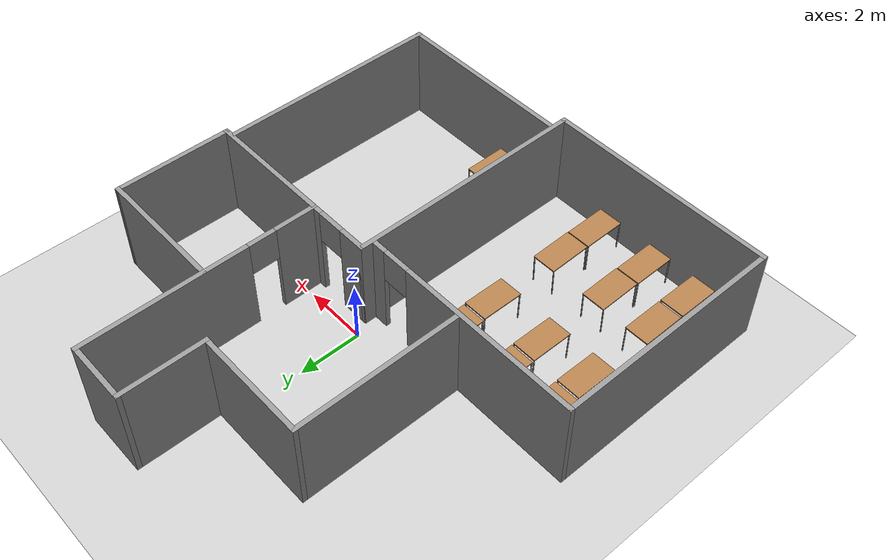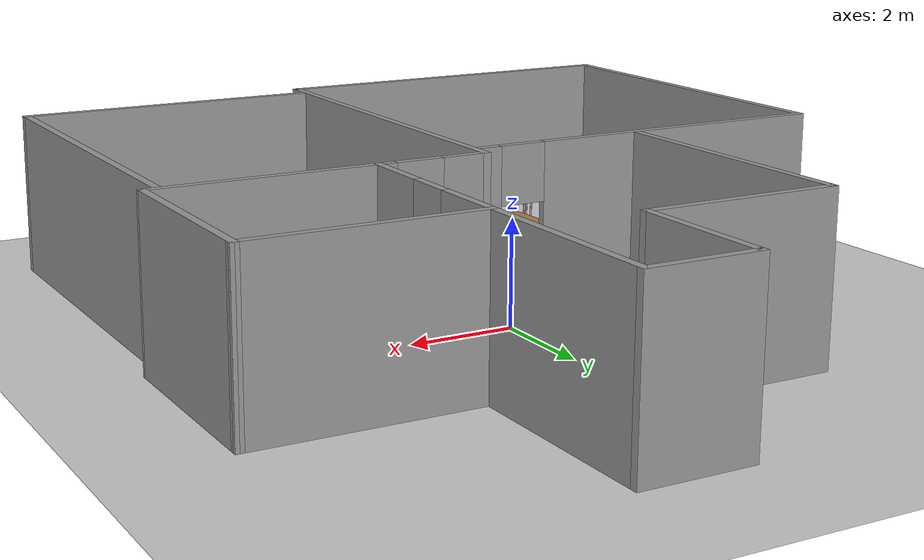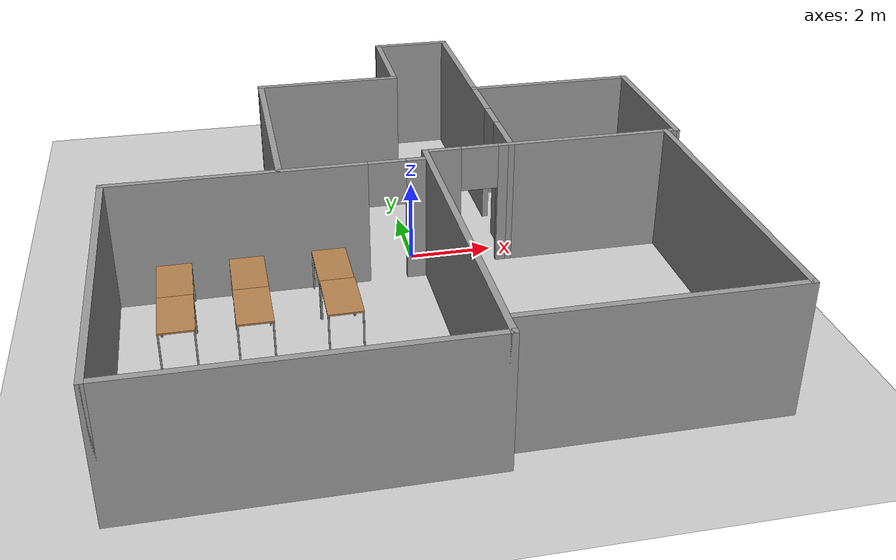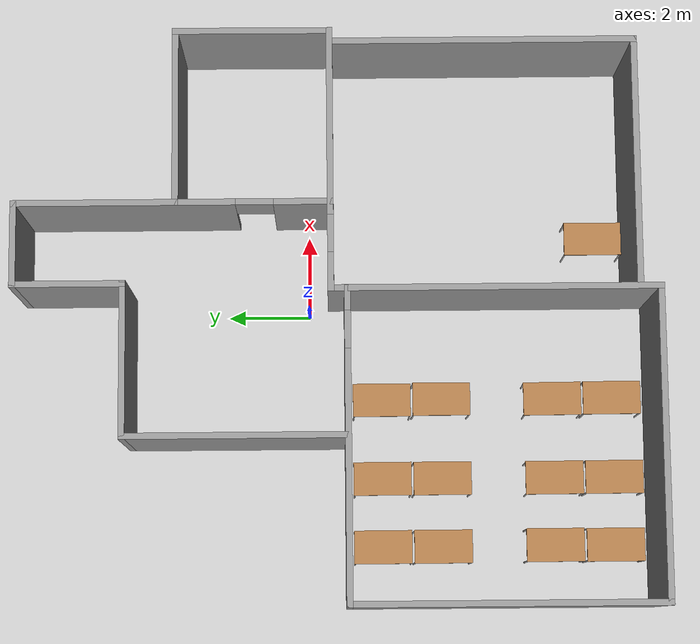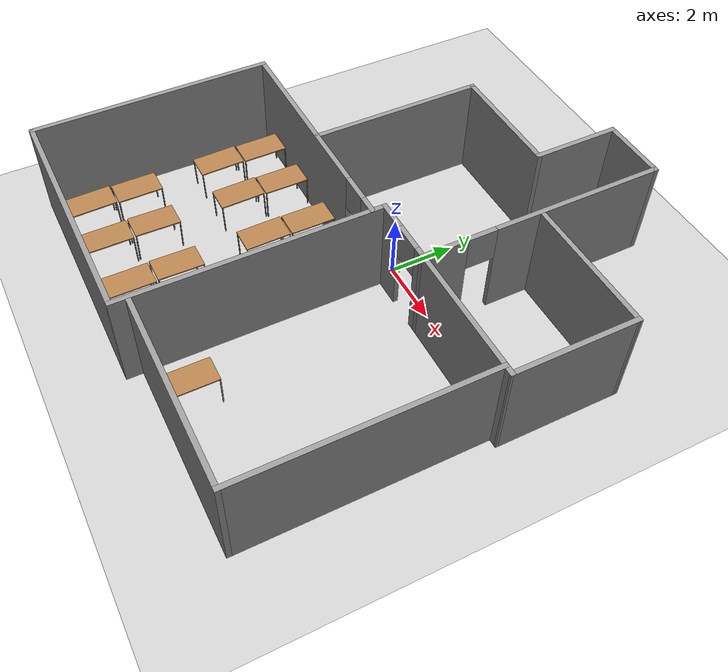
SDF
<sdf version="1.6">
 <world name="default">
  <model name="ground_plane">
   <static>1</static>
   <link name="link">
    <collision name="collision">
     <geometry><plane><normal>0 0 1</normal><size>100 100</size></plane></geometry>
     <surface><friction><ode><mu>100</mu><mu2>50</mu2></ode></friction></surface>
    </collision>
    <visual name="visual">
     <cast_shadows>0</cast_shadows>
     <geometry><plane><normal>0 0 1</normal><size>100 100</size></plane></geometry>
     <material>
      <script><uri>file://media/materials/scripts/gazebo.material</uri><name>Gazebo/Grey</name></script>
     </material>
    </visual>
   </link>
  </model>
  <model name="bh9f_lab">
   <pose>-0.31244 -0.65271 0 0 -0 0</pose>
   <link name="Wall_0">
    <pose>-3.1331 -0.253 0 0 -0 3.14159</pose>
    <visual name="Wall_0_Visual_0">
     <pose>-3.46145 0 1.55 0 -0 0</pose>
     <geometry><box><size>0.601096 0.15 3.1</size></box></geometry>
     <material>
      <script><uri>file://media/materials/scripts/gazebo.material</uri><name>Gazebo/Grey</name></script>
      <ambient>1 1 1 1</ambient>
     </material>
    </visual>
    <collision name="Wall_0_Collision_0">
     <geometry><box><size>0.601096 0.15 3.1</size></box></geometry>
     <pose>-3.46145 0 1.55 0 -0 0</pose>
    </collision>
    <visual name="Wall_0_Visual_1">
     <pose>0.750548 0 1.55 0 -0 0</pose>
     <geometry><box><size>6.0229 0.15 3.1</size></box></geometry>
     <material>
      <script><uri>file://media/materials/scripts/gazebo.material</uri><name>Gazebo/Grey</name></script>
      <ambient>1 1 1 1</ambient>
     </material>
    </visual>
    <collision name="Wall_0_Collision_1">
     <geometry><box><size>6.0229 0.15 3.1</size></box></geometry>
     <pose>0.750548 0 1.55 0 -0 0</pose>
    </collision>
    <visual name="Wall_0_Visual_3">
     <pose>-2.7109 0 2.55 0 -0 0</pose>
     <geometry><box><size>0.9 0.15 1.1</size></box></geometry>
     <material>
      <script><uri>file://media/materials/scripts/gazebo.material</uri><name>Gazebo/Grey</name></script>
      <ambient>1 1 1 1</ambient>
     </material>
    </visual>
    <collision name="Wall_0_Collision_3">
     <geometry><box><size>0.9 0.15 1.1</size></box></geometry>
     <pose>-2.7109 0 2.55 0 -0 0</pose>
    </collision>
   </link>
   <link name="Wall_12">
    <collision name="Wall_12_Collision">
     <geometry><box><size>7.44 0.15 3.1</size></box></geometry>
     <pose>0 0 1.55 0 -0 0</pose>
    </collision>
    <visual name="Wall_12_Visual">
     <pose>0 0 1.55 0 -0 0</pose>
     <geometry><box><size>7.44 0.15 3.1</size></box></geometry>
     <material>
      <script><uri>file://media/materials/scripts/gazebo.material</uri><name>Gazebo/Grey</name></script>
      <ambient>1 1 1 1</ambient>
     </material>
    </visual>
    <pose>6.5499 -3.516 0 0 0 -1.5708</pose>
   </link>
   <link name="Wall_14">
    <collision name="Wall_14_Collision">
     <geometry><box><size>6 0.15 3.1</size></box></geometry>
     <pose>0 0 1.55 0 -0 0</pose>
    </collision>
    <visual name="Wall_14_Visual">
     <pose>0 0 1.55 0 -0 0</pose>
     <geometry><box><size>6 0.15 3.1</size></box></geometry>
     <material>
      <script><uri>file://media/materials/scripts/gazebo.material</uri><name>Gazebo/Grey</name></script>
      <ambient>1 1 1 1</ambient>
     </material>
    </visual>
    <pose>3.6249 -7.161 0 0 -0 3.14159</pose>
   </link>
   <link name="Wall_16">
    <collision name="Wall_16_Collision">
     <geometry><box><size>3.83 0.15 3.1</size></box></geometry>
     <pose>0 0 1.55 0 -0 0</pose>
    </collision>
    <visual name="Wall_16_Visual">
     <pose>0 0 1.55 0 -0 0</pose>
     <geometry><box><size>3.83 0.15 3.1</size></box></geometry>
     <material>
      <script><uri>file://media/materials/scripts/gazebo.material</uri><name>Gazebo/Grey</name></script>
      <ambient>1 1 1 1</ambient>
     </material>
    </visual>
    <pose>6.8149 1.975 0 0 -0 1.56808</pose>
   </link>
   <link name="Wall_18">
    <collision name="Wall_18_Collision">
     <geometry><box><size>4.33 0.15 3.1</size></box></geometry>
     <pose>0 0 1.55 0 -0 0</pose>
    </collision>
    <visual name="Wall_18_Visual">
     <pose>0 0 1.55 0 -0 0</pose>
     <geometry><box><size>4.33 0.15 3.1</size></box></geometry>
     <material>
      <script><uri>file://media/materials/scripts/gazebo.material</uri><name>Gazebo/Grey</name></script>
      <ambient>1 1 1 1</ambient>
     </material>
    </visual>
    <pose>4.7299 3.815 0 0 -0 3.14159</pose>
   </link>
   <link name="Wall_2">
    <collision name="Wall_2_Collision">
     <geometry><box><size>7.542 0.15 3.1</size></box></geometry>
     <pose>0 0 1.55 0 -0 0</pose>
    </collision>
    <visual name="Wall_2_Visual">
     <pose>0 0 1.55 0 -0 0</pose>
     <geometry><box><size>7.542 0.15 3.1</size></box></geometry>
     <material>
      <script><uri>file://media/materials/scripts/gazebo.material</uri><name>Gazebo/Grey</name></script>
      <ambient>1 1 1 1</ambient>
     </material>
    </visual>
    <pose>-6.8201 -3.949 0 0 0 -1.5708</pose>
   </link>
   <link name="Wall_20">
    <pose>2.6379 3.89 0 0 -0 1.5708</pose>
    <visual name="Wall_20_Visual_0">
     <pose>-3.11825 0 1.55 0 -0 0</pose>
     <geometry><box><size>1.42351 0.15 3.1</size></box></geometry>
     <material>
      <script><uri>file://media/materials/scripts/gazebo.material</uri><name>Gazebo/Grey</name></script>
      <ambient>1 1 1 1</ambient>
     </material>
    </visual>
    <collision name="Wall_20_Collision_0">
     <geometry><box><size>1.42351 0.15 3.1</size></box></geometry>
     <pose>-3.11825 0 1.55 0 -0 0</pose>
    </collision>
    <visual name="Wall_20_Visual_1">
     <pose>1.16175 0 1.55 0 -0 0</pose>
     <geometry><box><size>5.33649 0.15 3.1</size></box></geometry>
     <material>
      <script><uri>file://media/materials/scripts/gazebo.material</uri><name>Gazebo/Grey</name></script>
      <ambient>1 1 1 1</ambient>
     </material>
    </visual>
    <collision name="Wall_20_Collision_1">
     <geometry><box><size>5.33649 0.15 3.1</size></box></geometry>
     <pose>1.16175 0 1.55 0 -0 0</pose>
    </collision>
    <visual name="Wall_20_Visual_3">
     <pose>-1.95649 0 2.55 0 -0 0</pose>
     <geometry><box><size>0.9 0.15 1.1</size></box></geometry>
     <material>
      <script><uri>file://media/materials/scripts/gazebo.material</uri><name>Gazebo/Grey</name></script>
      <ambient>1 1 1 1</ambient>
     </material>
    </visual>
    <collision name="Wall_20_Collision_3">
     <geometry><box><size>0.9 0.15 1.1</size></box></geometry>
     <pose>-1.95649 0 2.55 0 -0 0</pose>
    </collision>
   </link>
   <link name="Wall_24">
    <collision name="Wall_24_Collision">
     <geometry><box><size>2.089 0.15 3.1</size></box></geometry>
     <pose>0 0 1.55 0 -0 0</pose>
    </collision>
    <visual name="Wall_24_Visual">
     <pose>0 0 1.55 0 -0 0</pose>
     <geometry><box><size>2.089 0.15 3.1</size></box></geometry>
     <material>
      <script><uri>file://media/materials/scripts/gazebo.material</uri><name>Gazebo/Grey</name></script>
      <ambient>1 1 1 1</ambient>
     </material>
    </visual>
    <pose>1.6684 7.645 0 0 -0 3.14159</pose>
   </link>
   <link name="Wall_26">
    <collision name="Wall_26_Collision">
     <geometry><box><size>2.75 0.15 3.1</size></box></geometry>
     <pose>0 0 1.55 0 -0 0</pose>
    </collision>
    <visual name="Wall_26_Visual">
     <pose>0 0 1.55 0 -0 0</pose>
     <geometry><box><size>2.75 0.15 3.1</size></box></geometry>
     <material>
      <script><uri>file://media/materials/scripts/gazebo.material</uri><name>Gazebo/Grey</name></script>
      <ambient>1 1 1 1</ambient>
     </material>
    </visual>
    <pose>0.698898 6.345 0 0 0 -1.5708</pose>
   </link>
   <link name="Wall_28">
    <collision name="Wall_28_Collision">
     <geometry><box><size>3.75 0.15 3.1</size></box></geometry>
     <pose>0 0 1.55 0 -0 0</pose>
    </collision>
    <visual name="Wall_28_Visual">
     <pose>0 0 1.55 0 -0 0</pose>
     <geometry><box><size>3.75 0.15 3.1</size></box></geometry>
     <material>
      <script><uri>file://media/materials/scripts/gazebo.material</uri><name>Gazebo/Grey</name></script>
      <ambient>1 1 1 1</ambient>
     </material>
    </visual>
    <pose>-1.1011 5.045 0 0 -0 3.14159</pose>
   </link>
   <link name="Wall_30">
    <collision name="Wall_30_Collision">
     <geometry><box><size>5.41 0.15 3.1</size></box></geometry>
     <pose>0 0 1.55 0 -0 0</pose>
    </collision>
    <visual name="Wall_30_Visual">
     <pose>0 0 1.55 0 -0 0</pose>
     <geometry><box><size>5.41 0.15 3.1</size></box></geometry>
     <material>
      <script><uri>file://media/materials/scripts/gazebo.material</uri><name>Gazebo/Grey</name></script>
      <ambient>1 1 1 1</ambient>
     </material>
    </visual>
    <pose>-2.9011 2.415 0 0 0 -1.5708</pose>
   </link>
   <link name="Wall_4">
    <collision name="Wall_4_Collision">
     <geometry><box><size>7.53 0.15 3.1</size></box></geometry>
     <pose>0 0 1.55 0 -0 0</pose>
    </collision>
    <visual name="Wall_4_Visual">
     <pose>0 0 1.55 0 -0 0</pose>
     <geometry><box><size>7.53 0.15 3.1</size></box></geometry>
     <material>
      <script><uri>file://media/materials/scripts/gazebo.material</uri><name>Gazebo/Grey</name></script>
      <ambient>1 1 1 1</ambient>
     </material>
    </visual>
    <pose>-3.1301 -7.645 0 0 -0 0</pose>
   </link>
   <link name="Wall_6">
    <collision name="Wall_6_Collision">
     <geometry><box><size>7.93 0.15 3.1</size></box></geometry>
     <pose>0 0 1.55 0 -0 0</pose>
    </collision>
    <visual name="Wall_6_Visual">
     <pose>0 0 1.55 0 -0 0</pose>
     <geometry><box><size>7.93 0.15 3.1</size></box></geometry>
     <material>
      <script><uri>file://media/materials/scripts/gazebo.material</uri><name>Gazebo/Grey</name></script>
      <ambient>1 1 1 1</ambient>
     </material>
    </visual>
    <pose>0.559898 -3.755 0 0 -0 1.5708</pose>
   </link>
   <link name="Wall_8">
    <pose>3.6849 0.135 0 0 -0 0</pose>
    <visual name="Wall_8_Visual_0">
     <pose>-2.73161 0 1.55 0 -0 0</pose>
     <geometry><box><size>0.936778 0.15 3.1</size></box></geometry>
     <material>
      <script><uri>file://media/materials/scripts/gazebo.material</uri><name>Gazebo/Grey</name></script>
      <ambient>1 1 1 1</ambient>
     </material>
    </visual>
    <collision name="Wall_8_Collision_0">
     <geometry><box><size>0.936778 0.15 3.1</size></box></geometry>
     <pose>-2.73161 0 1.55 0 -0 0</pose>
    </collision>
    <visual name="Wall_8_Visual_1">
     <pose>0.918389 0 1.55 0 -0 0</pose>
     <geometry><box><size>4.56322 0.15 3.1</size></box></geometry>
     <material>
      <script><uri>file://media/materials/scripts/gazebo.material</uri><name>Gazebo/Grey</name></script>
      <ambient>1 1 1 1</ambient>
     </material>
    </visual>
    <collision name="Wall_8_Collision_1">
     <geometry><box><size>4.56322 0.15 3.1</size></box></geometry>
     <pose>0.918389 0 1.55 0 -0 0</pose>
    </collision>
    <visual name="Wall_8_Visual_3">
     <pose>-1.81322 0 2.55 0 -0 0</pose>
     <geometry><box><size>0.9 0.15 1.1</size></box></geometry>
     <material>
      <script><uri>file://media/materials/scripts/gazebo.material</uri><name>Gazebo/Grey</name></script>
      <ambient>1 1 1 1</ambient>
     </material>
    </visual>
    <collision name="Wall_8_Collision_3">
     <geometry><box><size>0.9 0.15 1.1</size></box></geometry>
     <pose>-1.81322 0 2.55 0 -0 0</pose>
    </collision>
   </link>
   <static>1</static>
  </model>
  <model name="table_0_clone_0_clone_clone_2">
   <static>0</static>
   <link name="link">
    <collision name="surface">
     <pose>0 0 1 0 -0 0</pose>
     <geometry><box><size>1.5 0.8 0.03</size></box></geometry>
     <surface><friction><ode><mu>0.6</mu><mu2>0.6</mu2></ode></friction></surface>
    </collision>
    <visual name="visual1">
     <pose>0 0 1 0 -0 0</pose>
     <geometry><box><size>1.4 0.8 0.04</size></box></geometry>
     <material>
      <script><uri>file://media/materials/scripts/gazebo.material</uri><name>Gazebo/Wood</name></script>
     </material>
    </visual>
    <collision name="front_left_leg">
     <pose>0.68 0.38 0.5 0 -0 0</pose>
     <geometry><cylinder><radius>0.02</radius><length>1</length></cylinder></geometry>
    </collision>
    <visual name="front_left_leg">
     <pose>0.68 0.38 0.5 0 -0 0</pose>
     <geometry><cylinder><radius>0.02</radius><length>1</length></cylinder></geometry>
     <material>
      <script><uri>file://media/materials/scripts/gazebo.material</uri><name>Gazebo/Grey</name></script>
     </material>
    </visual>
    <collision name="front_right_leg">
     <pose>0.68 -0.38 0.5 0 -0 0</pose>
     <geometry><cylinder><radius>0.02</radius><length>1</length></cylinder></geometry>
    </collision>
    <visual name="front_right_leg">
     <pose>0.68 -0.38 0.5 0 -0 0</pose>
     <geometry><cylinder><radius>0.02</radius><length>1</length></cylinder></geometry>
     <material>
      <script><uri>file://media/materials/scripts/gazebo.material</uri><name>Gazebo/Grey</name></script>
     </material>
    </visual>
    <collision name="back_right_leg">
     <pose>-0.68 -0.38 0.5 0 -0 0</pose>
     <geometry><cylinder><radius>0.02</radius><length>1</length></cylinder></geometry>
    </collision>
    <visual name="back_right_leg">
     <pose>-0.68 -0.38 0.5 0 -0 0</pose>
     <geometry><cylinder><radius>0.02</radius><length>1</length></cylinder></geometry>
     <material>
      <script><uri>file://media/materials/scripts/gazebo.material</uri><name>Gazebo/Grey</name></script>
     </material>
    </visual>
    <collision name="back_left_leg">
     <pose>-0.68 0.38 0.5 0 -0 0</pose>
     <geometry><cylinder><radius>0.02</radius><length>1</length></cylinder></geometry>
    </collision>
    <visual name="back_left_leg">
     <pose>-0.68 0.38 0.5 0 -0 0</pose>
     <geometry><cylinder><radius>0.02</radius><length>1</length></cylinder></geometry>
     <material>
      <script><uri>file://media/materials/scripts/gazebo.material</uri><name>Gazebo/Grey</name></script>
     </material>
    </visual>
    <inertial>
     <inertia><ixx>1</ixx><ixy>0</ixy><ixz>0</ixz><iyy>1</iyy><iyz>0</iyz><izz>1</izz></inertia>
     <mass>1</mass>
    </inertial>
   </link>
   <pose>1.76358 -6.96121 -9e-06 0 0 -1.57001</pose>
  </model>
  <model name="table_1">
   <static>0</static>
   <link name="link">
    <collision name="surface">
     <pose>0 0 1 0 -0 0</pose>
     <geometry><box><size>1.5 0.8 0.03</size></box></geometry>
     <surface><friction><ode><mu>0.6</mu><mu2>0.6</mu2></ode></friction></surface>
    </collision>
    <visual name="visual1">
     <pose>0 0 1 0 -0 0</pose>
     <geometry><box><size>1.4 0.8 0.04</size></box></geometry>
     <material>
      <script><uri>file://media/materials/scripts/gazebo.material</uri><name>Gazebo/Wood</name></script>
     </material>
    </visual>
    <collision name="front_left_leg">
     <pose>0.68 0.38 0.5 0 -0 0</pose>
     <geometry><cylinder><radius>0.02</radius><length>1</length></cylinder></geometry>
    </collision>
    <visual name="front_left_leg">
     <pose>0.68 0.38 0.5 0 -0 0</pose>
     <geometry><cylinder><radius>0.02</radius><length>1</length></cylinder></geometry>
     <material>
      <script><uri>file://media/materials/scripts/gazebo.material</uri><name>Gazebo/Grey</name></script>
     </material>
    </visual>
    <collision name="front_right_leg">
     <pose>0.68 -0.38 0.5 0 -0 0</pose>
     <geometry><cylinder><radius>0.02</radius><length>1</length></cylinder></geometry>
    </collision>
    <visual name="front_right_leg">
     <pose>0.68 -0.38 0.5 0 -0 0</pose>
     <geometry><cylinder><radius>0.02</radius><length>1</length></cylinder></geometry>
     <material>
      <script><uri>file://media/materials/scripts/gazebo.material</uri><name>Gazebo/Grey</name></script>
     </material>
    </visual>
    <collision name="back_right_leg">
     <pose>-0.68 -0.38 0.5 0 -0 0</pose>
     <geometry><cylinder><radius>0.02</radius><length>1</length></cylinder></geometry>
    </collision>
    <visual name="back_right_leg">
     <pose>-0.68 -0.38 0.5 0 -0 0</pose>
     <geometry><cylinder><radius>0.02</radius><length>1</length></cylinder></geometry>
     <material>
      <script><uri>file://media/materials/scripts/gazebo.material</uri><name>Gazebo/Grey</name></script>
     </material>
    </visual>
    <collision name="back_left_leg">
     <pose>-0.68 0.38 0.5 0 -0 0</pose>
     <geometry><cylinder><radius>0.02</radius><length>1</length></cylinder></geometry>
    </collision>
    <visual name="back_left_leg">
     <pose>-0.68 0.38 0.5 0 -0 0</pose>
     <geometry><cylinder><radius>0.02</radius><length>1</length></cylinder></geometry>
     <material>
      <script><uri>file://media/materials/scripts/gazebo.material</uri><name>Gazebo/Grey</name></script>
     </material>
    </visual>
    <inertial>
     <inertia><ixx>1</ixx><ixy>0</ixy><ixz>0</ixz><iyy>1</iyy><iyz>0</iyz><izz>1</izz></inertia>
     <mass>1</mass>
    </inertial>
   </link>
   <pose>-2.18508 -1.73153 -1.1e-05 3e-06 -1e-06 -1.56874</pose>
  </model>
  <model name="table_1_clone">
   <static>0</static>
   <link name="link">
    <collision name="surface">
     <pose>0 0 1 0 -0 0</pose>
     <geometry><box><size>1.5 0.8 0.03</size></box></geometry>
     <surface><friction><ode><mu>0.6</mu><mu2>0.6</mu2></ode></friction></surface>
    </collision>
    <visual name="visual1">
     <pose>0 0 1 0 -0 0</pose>
     <geometry><box><size>1.4 0.8 0.04</size></box></geometry>
     <material>
      <script><uri>file://media/materials/scripts/gazebo.material</uri><name>Gazebo/Wood</name></script>
     </material>
    </visual>
    <collision name="front_left_leg">
     <pose>0.68 0.38 0.5 0 -0 0</pose>
     <geometry><cylinder><radius>0.02</radius><length>1</length></cylinder></geometry>
    </collision>
    <visual name="front_left_leg">
     <pose>0.68 0.38 0.5 0 -0 0</pose>
     <geometry><cylinder><radius>0.02</radius><length>1</length></cylinder></geometry>
     <material>
      <script><uri>file://media/materials/scripts/gazebo.material</uri><name>Gazebo/Grey</name></script>
     </material>
    </visual>
    <collision name="front_right_leg">
     <pose>0.68 -0.38 0.5 0 -0 0</pose>
     <geometry><cylinder><radius>0.02</radius><length>1</length></cylinder></geometry>
    </collision>
    <visual name="front_right_leg">
     <pose>0.68 -0.38 0.5 0 -0 0</pose>
     <geometry><cylinder><radius>0.02</radius><length>1</length></cylinder></geometry>
     <material>
      <script><uri>file://media/materials/scripts/gazebo.material</uri><name>Gazebo/Grey</name></script>
     </material>
    </visual>
    <collision name="back_right_leg">
     <pose>-0.68 -0.38 0.5 0 -0 0</pose>
     <geometry><cylinder><radius>0.02</radius><length>1</length></cylinder></geometry>
    </collision>
    <visual name="back_right_leg">
     <pose>-0.68 -0.38 0.5 0 -0 0</pose>
     <geometry><cylinder><radius>0.02</radius><length>1</length></cylinder></geometry>
     <material>
      <script><uri>file://media/materials/scripts/gazebo.material</uri><name>Gazebo/Grey</name></script>
     </material>
    </visual>
    <collision name="back_left_leg">
     <pose>-0.68 0.38 0.5 0 -0 0</pose>
     <geometry><cylinder><radius>0.02</radius><length>1</length></cylinder></geometry>
    </collision>
    <visual name="back_left_leg">
     <pose>-0.68 0.38 0.5 0 -0 0</pose>
     <geometry><cylinder><radius>0.02</radius><length>1</length></cylinder></geometry>
     <material>
      <script><uri>file://media/materials/scripts/gazebo.material</uri><name>Gazebo/Grey</name></script>
     </material>
    </visual>
    <inertial>
     <inertia><ixx>1</ixx><ixy>0</ixy><ixz>0</ixz><iyy>1</iyy><iyz>0</iyz><izz>1</izz></inertia>
     <mass>1</mass>
    </inertial>
   </link>
   <pose>-4.09667 -1.73233 0 1e-06 -0 -1.56673</pose>
  </model>
  <model name="table_1_clone_0">
   <static>0</static>
   <link name="link">
    <collision name="surface">
     <pose>0 0 1 0 -0 0</pose>
     <geometry><box><size>1.5 0.8 0.03</size></box></geometry>
     <surface><friction><ode><mu>0.6</mu><mu2>0.6</mu2></ode></friction></surface>
    </collision>
    <visual name="visual1">
     <pose>0 0 1 0 -0 0</pose>
     <geometry><box><size>1.4 0.8 0.04</size></box></geometry>
     <material>
      <script><uri>file://media/materials/scripts/gazebo.material</uri><name>Gazebo/Wood</name></script>
     </material>
    </visual>
    <collision name="front_left_leg">
     <pose>0.68 0.38 0.5 0 -0 0</pose>
     <geometry><cylinder><radius>0.02</radius><length>1</length></cylinder></geometry>
    </collision>
    <visual name="front_left_leg">
     <pose>0.68 0.38 0.5 0 -0 0</pose>
     <geometry><cylinder><radius>0.02</radius><length>1</length></cylinder></geometry>
     <material>
      <script><uri>file://media/materials/scripts/gazebo.material</uri><name>Gazebo/Grey</name></script>
     </material>
    </visual>
    <collision name="front_right_leg">
     <pose>0.68 -0.38 0.5 0 -0 0</pose>
     <geometry><cylinder><radius>0.02</radius><length>1</length></cylinder></geometry>
    </collision>
    <visual name="front_right_leg">
     <pose>0.68 -0.38 0.5 0 -0 0</pose>
     <geometry><cylinder><radius>0.02</radius><length>1</length></cylinder></geometry>
     <material>
      <script><uri>file://media/materials/scripts/gazebo.material</uri><name>Gazebo/Grey</name></script>
     </material>
    </visual>
    <collision name="back_right_leg">
     <pose>-0.68 -0.38 0.5 0 -0 0</pose>
     <geometry><cylinder><radius>0.02</radius><length>1</length></cylinder></geometry>
    </collision>
    <visual name="back_right_leg">
     <pose>-0.68 -0.38 0.5 0 -0 0</pose>
     <geometry><cylinder><radius>0.02</radius><length>1</length></cylinder></geometry>
     <material>
      <script><uri>file://media/materials/scripts/gazebo.material</uri><name>Gazebo/Grey</name></script>
     </material>
    </visual>
    <collision name="back_left_leg">
     <pose>-0.68 0.38 0.5 0 -0 0</pose>
     <geometry><cylinder><radius>0.02</radius><length>1</length></cylinder></geometry>
    </collision>
    <visual name="back_left_leg">
     <pose>-0.68 0.38 0.5 0 -0 0</pose>
     <geometry><cylinder><radius>0.02</radius><length>1</length></cylinder></geometry>
     <material>
      <script><uri>file://media/materials/scripts/gazebo.material</uri><name>Gazebo/Grey</name></script>
     </material>
    </visual>
    <inertial>
     <inertia><ixx>1</ixx><ixy>0</ixy><ixz>0</ixz><iyy>1</iyy><iyz>0</iyz><izz>1</izz></inertia>
     <mass>1</mass>
    </inertial>
   </link>
   <pose>-5.74364 -1.73258 0 3e-06 -1e-06 -1.56609</pose>
  </model>
  <model name="table_1_clone_1">
   <static>0</static>
   <link name="link">
    <collision name="surface">
     <pose>0 0 1 0 -0 0</pose>
     <geometry><box><size>1.5 0.8 0.03</size></box></geometry>
     <surface><friction><ode><mu>0.6</mu><mu2>0.6</mu2></ode></friction></surface>
    </collision>
    <visual name="visual1">
     <pose>0 0 1 0 -0 0</pose>
     <geometry><box><size>1.4 0.8 0.04</size></box></geometry>
     <material>
      <script><uri>file://media/materials/scripts/gazebo.material</uri><name>Gazebo/Wood</name></script>
     </material>
    </visual>
    <collision name="front_left_leg">
     <pose>0.68 0.38 0.5 0 -0 0</pose>
     <geometry><cylinder><radius>0.02</radius><length>1</length></cylinder></geometry>
    </collision>
    <visual name="front_left_leg">
     <pose>0.68 0.38 0.5 0 -0 0</pose>
     <geometry><cylinder><radius>0.02</radius><length>1</length></cylinder></geometry>
     <material>
      <script><uri>file://media/materials/scripts/gazebo.material</uri><name>Gazebo/Grey</name></script>
     </material>
    </visual>
    <collision name="front_right_leg">
     <pose>0.68 -0.38 0.5 0 -0 0</pose>
     <geometry><cylinder><radius>0.02</radius><length>1</length></cylinder></geometry>
    </collision>
    <visual name="front_right_leg">
     <pose>0.68 -0.38 0.5 0 -0 0</pose>
     <geometry><cylinder><radius>0.02</radius><length>1</length></cylinder></geometry>
     <material>
      <script><uri>file://media/materials/scripts/gazebo.material</uri><name>Gazebo/Grey</name></script>
     </material>
    </visual>
    <collision name="back_right_leg">
     <pose>-0.68 -0.38 0.5 0 -0 0</pose>
     <geometry><cylinder><radius>0.02</radius><length>1</length></cylinder></geometry>
    </collision>
    <visual name="back_right_leg">
     <pose>-0.68 -0.38 0.5 0 -0 0</pose>
     <geometry><cylinder><radius>0.02</radius><length>1</length></cylinder></geometry>
     <material>
      <script><uri>file://media/materials/scripts/gazebo.material</uri><name>Gazebo/Grey</name></script>
     </material>
    </visual>
    <collision name="back_left_leg">
     <pose>-0.68 0.38 0.5 0 -0 0</pose>
     <geometry><cylinder><radius>0.02</radius><length>1</length></cylinder></geometry>
    </collision>
    <visual name="back_left_leg">
     <pose>-0.68 0.38 0.5 0 -0 0</pose>
     <geometry><cylinder><radius>0.02</radius><length>1</length></cylinder></geometry>
     <material>
      <script><uri>file://media/materials/scripts/gazebo.material</uri><name>Gazebo/Grey</name></script>
     </material>
    </visual>
    <inertial>
     <inertia><ixx>1</ixx><ixy>0</ixy><ixz>0</ixz><iyy>1</iyy><iyz>0</iyz><izz>1</izz></inertia>
     <mass>1</mass>
    </inertial>
   </link>
   <pose>-2.16909 -3.16074 0.015103 0 0.021578 -1.56873</pose>
  </model>
  <model name="table_1_clone_2">
   <static>0</static>
   <link name="link">
    <collision name="surface">
     <pose>0 0 1 0 -0 0</pose>
     <geometry><box><size>1.5 0.8 0.03</size></box></geometry>
     <surface><friction><ode><mu>0.6</mu><mu2>0.6</mu2></ode></friction></surface>
    </collision>
    <visual name="visual1">
     <pose>0 0 1 0 -0 0</pose>
     <geometry><box><size>1.4 0.8 0.04</size></box></geometry>
     <material>
      <script><uri>file://media/materials/scripts/gazebo.material</uri><name>Gazebo/Wood</name></script>
     </material>
    </visual>
    <collision name="front_left_leg">
     <pose>0.68 0.38 0.5 0 -0 0</pose>
     <geometry><cylinder><radius>0.02</radius><length>1</length></cylinder></geometry>
    </collision>
    <visual name="front_left_leg">
     <pose>0.68 0.38 0.5 0 -0 0</pose>
     <geometry><cylinder><radius>0.02</radius><length>1</length></cylinder></geometry>
     <material>
      <script><uri>file://media/materials/scripts/gazebo.material</uri><name>Gazebo/Grey</name></script>
     </material>
    </visual>
    <collision name="front_right_leg">
     <pose>0.68 -0.38 0.5 0 -0 0</pose>
     <geometry><cylinder><radius>0.02</radius><length>1</length></cylinder></geometry>
    </collision>
    <visual name="front_right_leg">
     <pose>0.68 -0.38 0.5 0 -0 0</pose>
     <geometry><cylinder><radius>0.02</radius><length>1</length></cylinder></geometry>
     <material>
      <script><uri>file://media/materials/scripts/gazebo.material</uri><name>Gazebo/Grey</name></script>
     </material>
    </visual>
    <collision name="back_right_leg">
     <pose>-0.68 -0.38 0.5 0 -0 0</pose>
     <geometry><cylinder><radius>0.02</radius><length>1</length></cylinder></geometry>
    </collision>
    <visual name="back_right_leg">
     <pose>-0.68 -0.38 0.5 0 -0 0</pose>
     <geometry><cylinder><radius>0.02</radius><length>1</length></cylinder></geometry>
     <material>
      <script><uri>file://media/materials/scripts/gazebo.material</uri><name>Gazebo/Grey</name></script>
     </material>
    </visual>
    <collision name="back_left_leg">
     <pose>-0.68 0.38 0.5 0 -0 0</pose>
     <geometry><cylinder><radius>0.02</radius><length>1</length></cylinder></geometry>
    </collision>
    <visual name="back_left_leg">
     <pose>-0.68 0.38 0.5 0 -0 0</pose>
     <geometry><cylinder><radius>0.02</radius><length>1</length></cylinder></geometry>
     <material>
      <script><uri>file://media/materials/scripts/gazebo.material</uri><name>Gazebo/Grey</name></script>
     </material>
    </visual>
    <inertial>
     <inertia><ixx>1</ixx><ixy>0</ixy><ixz>0</ixz><iyy>1</iyy><iyz>0</iyz><izz>1</izz></inertia>
     <mass>1</mass>
    </inertial>
   </link>
   <pose>-4.09641 -3.16157 0.015105 2e-06 0.02159 -1.56673</pose>
  </model>
  <model name="table_1_clone_3">
   <static>0</static>
   <link name="link">
    <collision name="surface">
     <pose>0 0 1 0 -0 0</pose>
     <geometry><box><size>1.5 0.8 0.03</size></box></geometry>
     <surface><friction><ode><mu>0.6</mu><mu2>0.6</mu2></ode></friction></surface>
    </collision>
    <visual name="visual1">
     <pose>0 0 1 0 -0 0</pose>
     <geometry><box><size>1.4 0.8 0.04</size></box></geometry>
     <material>
      <script><uri>file://media/materials/scripts/gazebo.material</uri><name>Gazebo/Wood</name></script>
     </material>
    </visual>
    <collision name="front_left_leg">
     <pose>0.68 0.38 0.5 0 -0 0</pose>
     <geometry><cylinder><radius>0.02</radius><length>1</length></cylinder></geometry>
    </collision>
    <visual name="front_left_leg">
     <pose>0.68 0.38 0.5 0 -0 0</pose>
     <geometry><cylinder><radius>0.02</radius><length>1</length></cylinder></geometry>
     <material>
      <script><uri>file://media/materials/scripts/gazebo.material</uri><name>Gazebo/Grey</name></script>
     </material>
    </visual>
    <collision name="front_right_leg">
     <pose>0.68 -0.38 0.5 0 -0 0</pose>
     <geometry><cylinder><radius>0.02</radius><length>1</length></cylinder></geometry>
    </collision>
    <visual name="front_right_leg">
     <pose>0.68 -0.38 0.5 0 -0 0</pose>
     <geometry><cylinder><radius>0.02</radius><length>1</length></cylinder></geometry>
     <material>
      <script><uri>file://media/materials/scripts/gazebo.material</uri><name>Gazebo/Grey</name></script>
     </material>
    </visual>
    <collision name="back_right_leg">
     <pose>-0.68 -0.38 0.5 0 -0 0</pose>
     <geometry><cylinder><radius>0.02</radius><length>1</length></cylinder></geometry>
    </collision>
    <visual name="back_right_leg">
     <pose>-0.68 -0.38 0.5 0 -0 0</pose>
     <geometry><cylinder><radius>0.02</radius><length>1</length></cylinder></geometry>
     <material>
      <script><uri>file://media/materials/scripts/gazebo.material</uri><name>Gazebo/Grey</name></script>
     </material>
    </visual>
    <collision name="back_left_leg">
     <pose>-0.68 0.38 0.5 0 -0 0</pose>
     <geometry><cylinder><radius>0.02</radius><length>1</length></cylinder></geometry>
    </collision>
    <visual name="back_left_leg">
     <pose>-0.68 0.38 0.5 0 -0 0</pose>
     <geometry><cylinder><radius>0.02</radius><length>1</length></cylinder></geometry>
     <material>
      <script><uri>file://media/materials/scripts/gazebo.material</uri><name>Gazebo/Grey</name></script>
     </material>
    </visual>
    <inertial>
     <inertia><ixx>1</ixx><ixy>0</ixy><ixz>0</ixz><iyy>1</iyy><iyz>0</iyz><izz>1</izz></inertia>
     <mass>1</mass>
    </inertial>
   </link>
   <pose>-5.74043 -3.16181 0.015108 2e-06 0.021584 -1.56609</pose>
  </model>
  <model name="table_1_clone_4">
   <static>0</static>
   <link name="link">
    <collision name="surface">
     <pose>0 0 1 0 -0 0</pose>
     <geometry><box><size>1.5 0.8 0.03</size></box></geometry>
     <surface><friction><ode><mu>0.6</mu><mu2>0.6</mu2></ode></friction></surface>
    </collision>
    <visual name="visual1">
     <pose>0 0 1 0 -0 0</pose>
     <geometry><box><size>1.4 0.8 0.04</size></box></geometry>
     <material>
      <script><uri>file://media/materials/scripts/gazebo.material</uri><name>Gazebo/Wood</name></script>
     </material>
    </visual>
    <collision name="front_left_leg">
     <pose>0.68 0.38 0.5 0 -0 0</pose>
     <geometry><cylinder><radius>0.02</radius><length>1</length></cylinder></geometry>
    </collision>
    <visual name="front_left_leg">
     <pose>0.68 0.38 0.5 0 -0 0</pose>
     <geometry><cylinder><radius>0.02</radius><length>1</length></cylinder></geometry>
     <material>
      <script><uri>file://media/materials/scripts/gazebo.material</uri><name>Gazebo/Grey</name></script>
     </material>
    </visual>
    <collision name="front_right_leg">
     <pose>0.68 -0.38 0.5 0 -0 0</pose>
     <geometry><cylinder><radius>0.02</radius><length>1</length></cylinder></geometry>
    </collision>
    <visual name="front_right_leg">
     <pose>0.68 -0.38 0.5 0 -0 0</pose>
     <geometry><cylinder><radius>0.02</radius><length>1</length></cylinder></geometry>
     <material>
      <script><uri>file://media/materials/scripts/gazebo.material</uri><name>Gazebo/Grey</name></script>
     </material>
    </visual>
    <collision name="back_right_leg">
     <pose>-0.68 -0.38 0.5 0 -0 0</pose>
     <geometry><cylinder><radius>0.02</radius><length>1</length></cylinder></geometry>
    </collision>
    <visual name="back_right_leg">
     <pose>-0.68 -0.38 0.5 0 -0 0</pose>
     <geometry><cylinder><radius>0.02</radius><length>1</length></cylinder></geometry>
     <material>
      <script><uri>file://media/materials/scripts/gazebo.material</uri><name>Gazebo/Grey</name></script>
     </material>
    </visual>
    <collision name="back_left_leg">
     <pose>-0.68 0.38 0.5 0 -0 0</pose>
     <geometry><cylinder><radius>0.02</radius><length>1</length></cylinder></geometry>
    </collision>
    <visual name="back_left_leg">
     <pose>-0.68 0.38 0.5 0 -0 0</pose>
     <geometry><cylinder><radius>0.02</radius><length>1</length></cylinder></geometry>
     <material>
      <script><uri>file://media/materials/scripts/gazebo.material</uri><name>Gazebo/Grey</name></script>
     </material>
    </visual>
    <inertial>
     <inertia><ixx>1</ixx><ixy>0</ixy><ixz>0</ixz><iyy>1</iyy><iyz>0</iyz><izz>1</izz></inertia>
     <mass>1</mass>
    </inertial>
   </link>
   <pose>-2.16516 -7.33055 0 0 0 -1.56505</pose>
  </model>
  <model name="table_1_clone_5">
   <static>0</static>
   <link name="link">
    <collision name="surface">
     <pose>0 0 1 0 -0 0</pose>
     <geometry><box><size>1.5 0.8 0.03</size></box></geometry>
     <surface><friction><ode><mu>0.6</mu><mu2>0.6</mu2></ode></friction></surface>
    </collision>
    <visual name="visual1">
     <pose>0 0 1 0 -0 0</pose>
     <geometry><box><size>1.4 0.8 0.04</size></box></geometry>
     <material>
      <script><uri>file://media/materials/scripts/gazebo.material</uri><name>Gazebo/Wood</name></script>
     </material>
    </visual>
    <collision name="front_left_leg">
     <pose>0.68 0.38 0.5 0 -0 0</pose>
     <geometry><cylinder><radius>0.02</radius><length>1</length></cylinder></geometry>
    </collision>
    <visual name="front_left_leg">
     <pose>0.68 0.38 0.5 0 -0 0</pose>
     <geometry><cylinder><radius>0.02</radius><length>1</length></cylinder></geometry>
     <material>
      <script><uri>file://media/materials/scripts/gazebo.material</uri><name>Gazebo/Grey</name></script>
     </material>
    </visual>
    <collision name="front_right_leg">
     <pose>0.68 -0.38 0.5 0 -0 0</pose>
     <geometry><cylinder><radius>0.02</radius><length>1</length></cylinder></geometry>
    </collision>
    <visual name="front_right_leg">
     <pose>0.68 -0.38 0.5 0 -0 0</pose>
     <geometry><cylinder><radius>0.02</radius><length>1</length></cylinder></geometry>
     <material>
      <script><uri>file://media/materials/scripts/gazebo.material</uri><name>Gazebo/Grey</name></script>
     </material>
    </visual>
    <collision name="back_right_leg">
     <pose>-0.68 -0.38 0.5 0 -0 0</pose>
     <geometry><cylinder><radius>0.02</radius><length>1</length></cylinder></geometry>
    </collision>
    <visual name="back_right_leg">
     <pose>-0.68 -0.38 0.5 0 -0 0</pose>
     <geometry><cylinder><radius>0.02</radius><length>1</length></cylinder></geometry>
     <material>
      <script><uri>file://media/materials/scripts/gazebo.material</uri><name>Gazebo/Grey</name></script>
     </material>
    </visual>
    <collision name="back_left_leg">
     <pose>-0.68 0.38 0.5 0 -0 0</pose>
     <geometry><cylinder><radius>0.02</radius><length>1</length></cylinder></geometry>
    </collision>
    <visual name="back_left_leg">
     <pose>-0.68 0.38 0.5 0 -0 0</pose>
     <geometry><cylinder><radius>0.02</radius><length>1</length></cylinder></geometry>
     <material>
      <script><uri>file://media/materials/scripts/gazebo.material</uri><name>Gazebo/Grey</name></script>
     </material>
    </visual>
    <inertial>
     <inertia><ixx>1</ixx><ixy>0</ixy><ixz>0</ixz><iyy>1</iyy><iyz>0</iyz><izz>1</izz></inertia>
     <mass>1</mass>
    </inertial>
   </link>
   <pose>-2.18017 -5.90138 0.015108 -1e-06 -0.021585 -1.56505</pose>
  </model>
  <model name="table_1_clone_6">
   <static>0</static>
   <link name="link">
    <collision name="surface">
     <pose>0 0 1 0 -0 0</pose>
     <geometry><box><size>1.5 0.8 0.03</size></box></geometry>
     <surface><friction><ode><mu>0.6</mu><mu2>0.6</mu2></ode></friction></surface>
    </collision>
    <visual name="visual1">
     <pose>0 0 1 0 -0 0</pose>
     <geometry><box><size>1.4 0.8 0.04</size></box></geometry>
     <material>
      <script><uri>file://media/materials/scripts/gazebo.material</uri><name>Gazebo/Wood</name></script>
     </material>
    </visual>
    <collision name="front_left_leg">
     <pose>0.68 0.38 0.5 0 -0 0</pose>
     <geometry><cylinder><radius>0.02</radius><length>1</length></cylinder></geometry>
    </collision>
    <visual name="front_left_leg">
     <pose>0.68 0.38 0.5 0 -0 0</pose>
     <geometry><cylinder><radius>0.02</radius><length>1</length></cylinder></geometry>
     <material>
      <script><uri>file://media/materials/scripts/gazebo.material</uri><name>Gazebo/Grey</name></script>
     </material>
    </visual>
    <collision name="front_right_leg">
     <pose>0.68 -0.38 0.5 0 -0 0</pose>
     <geometry><cylinder><radius>0.02</radius><length>1</length></cylinder></geometry>
    </collision>
    <visual name="front_right_leg">
     <pose>0.68 -0.38 0.5 0 -0 0</pose>
     <geometry><cylinder><radius>0.02</radius><length>1</length></cylinder></geometry>
     <material>
      <script><uri>file://media/materials/scripts/gazebo.material</uri><name>Gazebo/Grey</name></script>
     </material>
    </visual>
    <collision name="back_right_leg">
     <pose>-0.68 -0.38 0.5 0 -0 0</pose>
     <geometry><cylinder><radius>0.02</radius><length>1</length></cylinder></geometry>
    </collision>
    <visual name="back_right_leg">
     <pose>-0.68 -0.38 0.5 0 -0 0</pose>
     <geometry><cylinder><radius>0.02</radius><length>1</length></cylinder></geometry>
     <material>
      <script><uri>file://media/materials/scripts/gazebo.material</uri><name>Gazebo/Grey</name></script>
     </material>
    </visual>
    <collision name="back_left_leg">
     <pose>-0.68 0.38 0.5 0 -0 0</pose>
     <geometry><cylinder><radius>0.02</radius><length>1</length></cylinder></geometry>
    </collision>
    <visual name="back_left_leg">
     <pose>-0.68 0.38 0.5 0 -0 0</pose>
     <geometry><cylinder><radius>0.02</radius><length>1</length></cylinder></geometry>
     <material>
      <script><uri>file://media/materials/scripts/gazebo.material</uri><name>Gazebo/Grey</name></script>
     </material>
    </visual>
    <inertial>
     <inertia><ixx>1</ixx><ixy>0</ixy><ixz>0</ixz><iyy>1</iyy><iyz>0</iyz><izz>1</izz></inertia>
     <mass>1</mass>
    </inertial>
   </link>
   <pose>-4.09149 -7.3458 -2.4e-05 0 3e-06 -1.56658</pose>
  </model>
  <model name="table_1_clone_6_clone">
   <static>0</static>
   <link name="link">
    <collision name="surface">
     <pose>0 0 1 0 -0 0</pose>
     <geometry><box><size>1.5 0.8 0.03</size></box></geometry>
     <surface><friction><ode><mu>0.6</mu><mu2>0.6</mu2></ode></friction></surface>
    </collision>
    <visual name="visual1">
     <pose>0 0 1 0 -0 0</pose>
     <geometry><box><size>1.4 0.8 0.04</size></box></geometry>
     <material>
      <script><uri>file://media/materials/scripts/gazebo.material</uri><name>Gazebo/Wood</name></script>
     </material>
    </visual>
    <collision name="front_left_leg">
     <pose>0.68 0.38 0.5 0 -0 0</pose>
     <geometry><cylinder><radius>0.02</radius><length>1</length></cylinder></geometry>
    </collision>
    <visual name="front_left_leg">
     <pose>0.68 0.38 0.5 0 -0 0</pose>
     <geometry><cylinder><radius>0.02</radius><length>1</length></cylinder></geometry>
     <material>
      <script><uri>file://media/materials/scripts/gazebo.material</uri><name>Gazebo/Grey</name></script>
     </material>
    </visual>
    <collision name="front_right_leg">
     <pose>0.68 -0.38 0.5 0 -0 0</pose>
     <geometry><cylinder><radius>0.02</radius><length>1</length></cylinder></geometry>
    </collision>
    <visual name="front_right_leg">
     <pose>0.68 -0.38 0.5 0 -0 0</pose>
     <geometry><cylinder><radius>0.02</radius><length>1</length></cylinder></geometry>
     <material>
      <script><uri>file://media/materials/scripts/gazebo.material</uri><name>Gazebo/Grey</name></script>
     </material>
    </visual>
    <collision name="back_right_leg">
     <pose>-0.68 -0.38 0.5 0 -0 0</pose>
     <geometry><cylinder><radius>0.02</radius><length>1</length></cylinder></geometry>
    </collision>
    <visual name="back_right_leg">
     <pose>-0.68 -0.38 0.5 0 -0 0</pose>
     <geometry><cylinder><radius>0.02</radius><length>1</length></cylinder></geometry>
     <material>
      <script><uri>file://media/materials/scripts/gazebo.material</uri><name>Gazebo/Grey</name></script>
     </material>
    </visual>
    <collision name="back_left_leg">
     <pose>-0.68 0.38 0.5 0 -0 0</pose>
     <geometry><cylinder><radius>0.02</radius><length>1</length></cylinder></geometry>
    </collision>
    <visual name="back_left_leg">
     <pose>-0.68 0.38 0.5 0 -0 0</pose>
     <geometry><cylinder><radius>0.02</radius><length>1</length></cylinder></geometry>
     <material>
      <script><uri>file://media/materials/scripts/gazebo.material</uri><name>Gazebo/Grey</name></script>
     </material>
    </visual>
    <inertial>
     <inertia><ixx>1</ixx><ixy>0</ixy><ixz>0</ixz><iyy>1</iyy><iyz>0</iyz><izz>1</izz></inertia>
     <mass>1</mass>
    </inertial>
   </link>
   <pose>-4.09954 -5.91658 0.015097 0 -0.021568 -1.56658</pose>
  </model>
  <model name="table_1_clone_6_clone_0">
   <static>0</static>
   <link name="link">
    <collision name="surface">
     <pose>0 0 1 0 -0 0</pose>
     <geometry><box><size>1.5 0.8 0.03</size></box></geometry>
     <surface><friction><ode><mu>0.6</mu><mu2>0.6</mu2></ode></friction></surface>
    </collision>
    <visual name="visual1">
     <pose>0 0 1 0 -0 0</pose>
     <geometry><box><size>1.4 0.8 0.04</size></box></geometry>
     <material>
      <script><uri>file://media/materials/scripts/gazebo.material</uri><name>Gazebo/Wood</name></script>
     </material>
    </visual>
    <collision name="front_left_leg">
     <pose>0.68 0.38 0.5 0 -0 0</pose>
     <geometry><cylinder><radius>0.02</radius><length>1</length></cylinder></geometry>
    </collision>
    <visual name="front_left_leg">
     <pose>0.68 0.38 0.5 0 -0 0</pose>
     <geometry><cylinder><radius>0.02</radius><length>1</length></cylinder></geometry>
     <material>
      <script><uri>file://media/materials/scripts/gazebo.material</uri><name>Gazebo/Grey</name></script>
     </material>
    </visual>
    <collision name="front_right_leg">
     <pose>0.68 -0.38 0.5 0 -0 0</pose>
     <geometry><cylinder><radius>0.02</radius><length>1</length></cylinder></geometry>
    </collision>
    <visual name="front_right_leg">
     <pose>0.68 -0.38 0.5 0 -0 0</pose>
     <geometry><cylinder><radius>0.02</radius><length>1</length></cylinder></geometry>
     <material>
      <script><uri>file://media/materials/scripts/gazebo.material</uri><name>Gazebo/Grey</name></script>
     </material>
    </visual>
    <collision name="back_right_leg">
     <pose>-0.68 -0.38 0.5 0 -0 0</pose>
     <geometry><cylinder><radius>0.02</radius><length>1</length></cylinder></geometry>
    </collision>
    <visual name="back_right_leg">
     <pose>-0.68 -0.38 0.5 0 -0 0</pose>
     <geometry><cylinder><radius>0.02</radius><length>1</length></cylinder></geometry>
     <material>
      <script><uri>file://media/materials/scripts/gazebo.material</uri><name>Gazebo/Grey</name></script>
     </material>
    </visual>
    <collision name="back_left_leg">
     <pose>-0.68 0.38 0.5 0 -0 0</pose>
     <geometry><cylinder><radius>0.02</radius><length>1</length></cylinder></geometry>
    </collision>
    <visual name="back_left_leg">
     <pose>-0.68 0.38 0.5 0 -0 0</pose>
     <geometry><cylinder><radius>0.02</radius><length>1</length></cylinder></geometry>
     <material>
      <script><uri>file://media/materials/scripts/gazebo.material</uri><name>Gazebo/Grey</name></script>
     </material>
    </visual>
    <inertial>
     <inertia><ixx>1</ixx><ixy>0</ixy><ixz>0</ixz><iyy>1</iyy><iyz>0</iyz><izz>1</izz></inertia>
     <mass>1</mass>
    </inertial>
   </link>
   <pose>-5.72514 -7.31556 0.015104 4e-06 0.02158 -1.56654</pose>
  </model>
  <model name="table_1_clone_6_clone_1">
   <static>0</static>
   <link name="link">
    <collision name="surface">
     <pose>0 0 1 0 -0 0</pose>
     <geometry><box><size>1.5 0.8 0.03</size></box></geometry>
     <surface><friction><ode><mu>0.6</mu><mu2>0.6</mu2></ode></friction></surface>
    </collision>
    <visual name="visual1">
     <pose>0 0 1 0 -0 0</pose>
     <geometry><box><size>1.4 0.8 0.04</size></box></geometry>
     <material>
      <script><uri>file://media/materials/scripts/gazebo.material</uri><name>Gazebo/Wood</name></script>
     </material>
    </visual>
    <collision name="front_left_leg">
     <pose>0.68 0.38 0.5 0 -0 0</pose>
     <geometry><cylinder><radius>0.02</radius><length>1</length></cylinder></geometry>
    </collision>
    <visual name="front_left_leg">
     <pose>0.68 0.38 0.5 0 -0 0</pose>
     <geometry><cylinder><radius>0.02</radius><length>1</length></cylinder></geometry>
     <material>
      <script><uri>file://media/materials/scripts/gazebo.material</uri><name>Gazebo/Grey</name></script>
     </material>
    </visual>
    <collision name="front_right_leg">
     <pose>0.68 -0.38 0.5 0 -0 0</pose>
     <geometry><cylinder><radius>0.02</radius><length>1</length></cylinder></geometry>
    </collision>
    <visual name="front_right_leg">
     <pose>0.68 -0.38 0.5 0 -0 0</pose>
     <geometry><cylinder><radius>0.02</radius><length>1</length></cylinder></geometry>
     <material>
      <script><uri>file://media/materials/scripts/gazebo.material</uri><name>Gazebo/Grey</name></script>
     </material>
    </visual>
    <collision name="back_right_leg">
     <pose>-0.68 -0.38 0.5 0 -0 0</pose>
     <geometry><cylinder><radius>0.02</radius><length>1</length></cylinder></geometry>
    </collision>
    <visual name="back_right_leg">
     <pose>-0.68 -0.38 0.5 0 -0 0</pose>
     <geometry><cylinder><radius>0.02</radius><length>1</length></cylinder></geometry>
     <material>
      <script><uri>file://media/materials/scripts/gazebo.material</uri><name>Gazebo/Grey</name></script>
     </material>
    </visual>
    <collision name="back_left_leg">
     <pose>-0.68 0.38 0.5 0 -0 0</pose>
     <geometry><cylinder><radius>0.02</radius><length>1</length></cylinder></geometry>
    </collision>
    <visual name="back_left_leg">
     <pose>-0.68 0.38 0.5 0 -0 0</pose>
     <geometry><cylinder><radius>0.02</radius><length>1</length></cylinder></geometry>
     <material>
      <script><uri>file://media/materials/scripts/gazebo.material</uri><name>Gazebo/Grey</name></script>
     </material>
    </visual>
    <inertial>
     <inertia><ixx>1</ixx><ixy>0</ixy><ixz>0</ixz><iyy>1</iyy><iyz>0</iyz><izz>1</izz></inertia>
     <mass>1</mass>
    </inertial>
   </link>
   <pose>-5.72082 -5.8863 0 0 0 -1.56654</pose>
  </model>
 </world>
</sdf>
